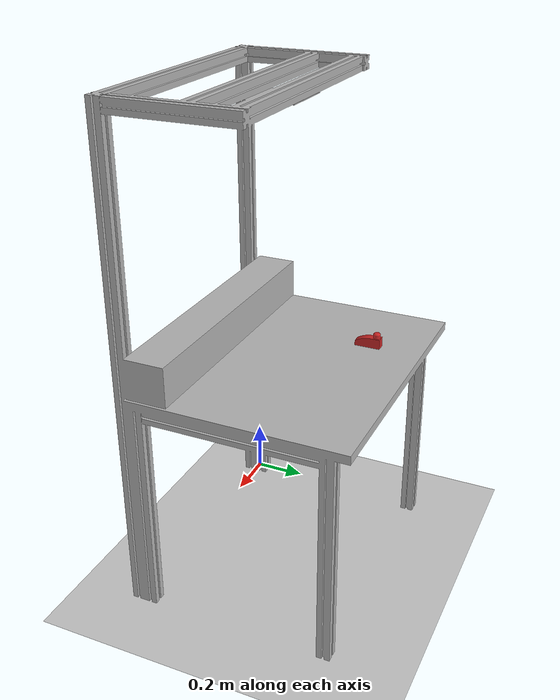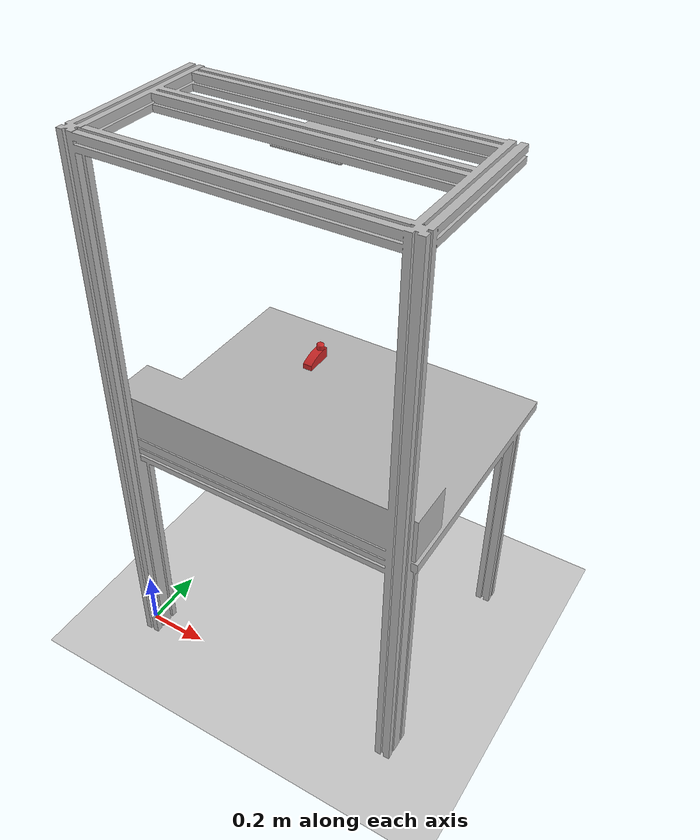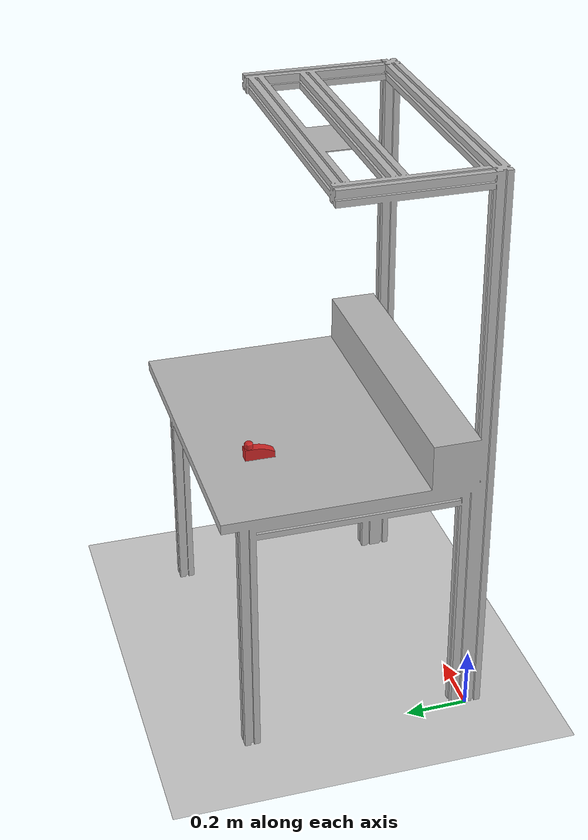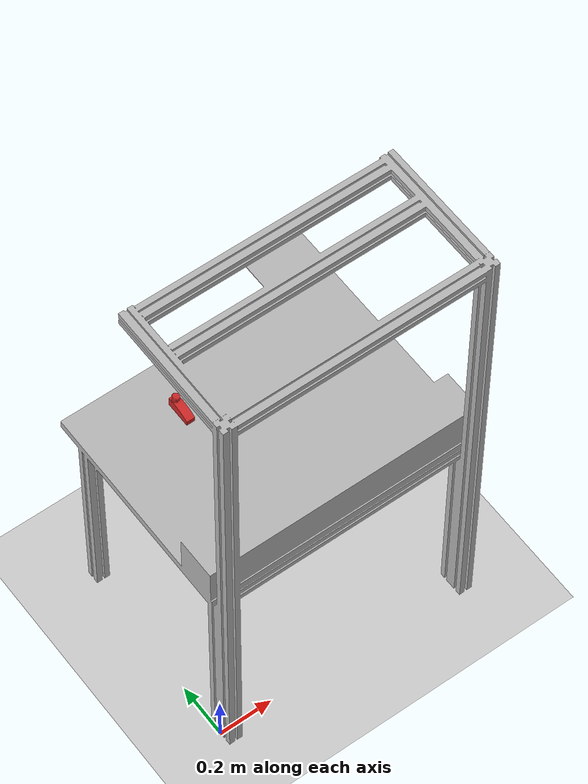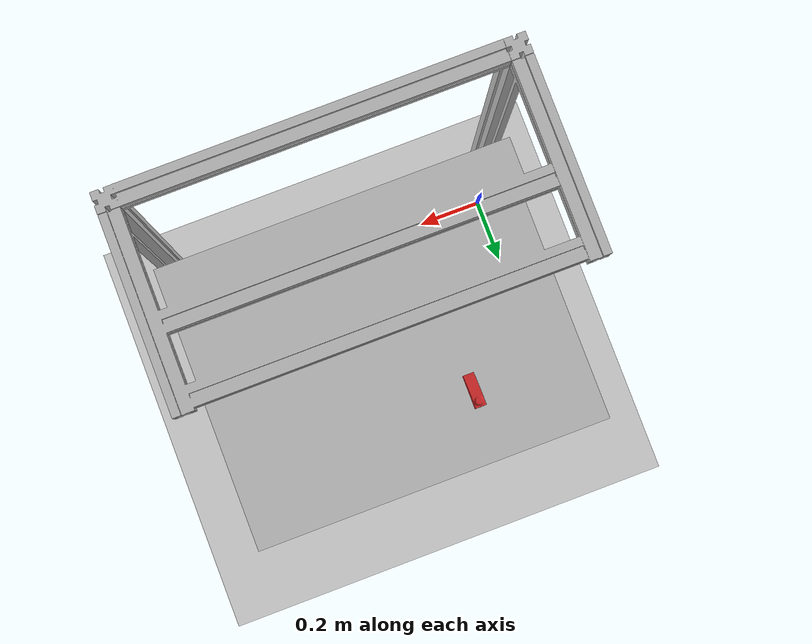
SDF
<?xml version="1.0" ?>
<sdf version="1.4">
  <world name="default">
    <physics type='ode'>
      <gravity>0 0 -9.81</gravity>
      <!-- max step size has to be a multiple of the desired task rate-->
      <max_step_size>0.001</max_step_size>
      <real_time_factor>1</real_time_factor>
    </physics>
    <!-- A global light source -->
    <include>
      <uri>model://sun</uri>
    </include>
    <!-- A ground plane -->
    <include>
      <uri>model://ground_plane</uri>
    </include>
    <include>
      <name>tavolo</name>
      <uri>model://tavolo</uri>
      <pose>0.0 0.0 0.0 0 0 0</pose>
    </include>
    <include>
      <name>X1-Y3-Z2-FILLET</name>
      <uri>model://X1-Y3-Z2-FILLET</uri>
      <pose>0.3 0.6 0.9 0 0 0</pose>
    </include>
     <gui>
    <camera name="gzclient_camera">
      <pose>1. 3.2 2.2 0. 0.4 -1.75</pose>
    </camera>
    </gui>

  </world>
</sdf>

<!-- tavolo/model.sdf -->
<sdf version="1.4">

<physics type="ode">

      <ode>

        <constraints>
          <contact_max_correcting_vel>0.1</contact_max_correcting_vel>
          <contact_surface_layer>0.0001</contact_surface_layer>
        </constraints>
      </ode>
	<max_contacts>10</max_contacts>
	</physics>

	<model name="tavolo">
	    <static>true</static>
		<link name="link">

		     <collision name="base">
			<pose>0.5 0.4 0.85 0 0 0</pose>
			<geometry>
			  <box>
			    <size>1 0.8 0.04</size>
			  </box>
			</geometry>

				<!-- see https://gazebosim.org/tutorials?tut=physics_params&cat=physics-->
				 <surface>
				  <bounce>
				    <restitution_coefficient>0.01</restitution_coefficient>
				    <threshold>5.0</threshold>
				  </bounce>
				  <friction>
				    <ode>
				      <mu>10</mu>
				      <mu2>10</mu2>
				    </ode>
				  </friction>
				  <contact>
				     <ode>
					<max_vel>0.1</max_vel>
					<min_depth>0.001</min_depth>
				        <kp>1000000.0</kp>
					<kd>1000.0</kd>
				      </ode>
			            </contact>
				</surface>

		     	</collision>

	     			<collision name="box">
				<pose>0.5 0.08 0.95 0 0 0</pose>
				<geometry>
				  <box>
				    <size>1 0.15 0.15</size>
				  </box>
				</geometry>

				 <surface>
				  <bounce>
				    <restitution_coefficient>0.01</restitution_coefficient>
				    <threshold>5.0</threshold>
				  </bounce>
				  <friction>
				    <ode>
				      <mu>10</mu>
				      <mu2>10</mu2>
				    </ode>
				  </friction>
				  <contact>
				     <ode>
					<max_vel>0.1</max_vel>
					<min_depth>0.001</min_depth>
				        <kp>1000000.0</kp>
					<kd>1000.0</kd>
				      </ode>
			            </contact>
				</surface>

			      </collision>

			   <collision name="back">
				<pose>0.5 -0.02 1.35 1.57 0 0</pose>
				<geometry>
				  <box>
				    <size>1 1.0 0.04</size>
				  </box>
				</geometry>

				 <surface>
				  <bounce>
				    <restitution_coefficient>0.01</restitution_coefficient>
				    <threshold>5.0</threshold>
				  </bounce>
				  <friction>
				    <ode>
				      <mu>10</mu>
				      <mu2>10</mu2>
				    </ode>
				  </friction>
				  <contact>
				     <ode>
					<max_vel>0.1</max_vel>
					<min_depth>0.001</min_depth>
				        <kp>1000000.0</kp>
					<kd>1000.0</kd>
				      </ode>
			            </contact>
				</surface>

			      </collision>

			<visual name="visual">
				<geometry>
					<mesh>
						<uri>model://tavolo/mesh/tavolo.stl</uri>
                                                <scale>0.001 0.001 0.001</scale>
					</mesh>
				</geometry>
			</visual>
		</link>
	</model>
</sdf>

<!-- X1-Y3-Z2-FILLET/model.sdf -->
<sdf version="1.4">
  <model name="X1-Y3-Z2-FILLET">
    <static>false</static>
    <link name="link">
      <pose>0 0 0 0 0 0</pose>
      <inertial>
        <pose>0e-02 0.6707e-02 -0.4936e-02</pose>
        <mass>16.4195e-6</mass>
        <inertia>
          <ixx>169.806e-10</ixx>
          <ixy>-0.0027e-10</ixy>
          <ixz>-0.0005e-10</ixz>
          <iyy>57.322e-10</iyy>
          <iyz>-22.714e-10</iyz>
          <izz>158.658e-10</izz>
        </inertia>
      </inertial>

      <visual name="visual">
        <geometry>
          <mesh>
            <uri>model://X1-Y3-Z2-FILLET/meshes/X1-Y3-Z2-FILLET.stl</uri>
          </mesh>
        </geometry>
        <material>
          <script>
            <uri>file://media/materials/scripts/gazebo.material</uri>
            <name>Gazebo/Red</name>
          </script>
        </material>
      </visual>

      <collision name="collision">
        <geometry>
          <mesh>
            <uri>model://X1-Y3-Z2-FILLET/meshes/X1-Y3-Z2-FILLET.stl</uri>
          </mesh>
        </geometry>
      </collision>
    </link>
  </model>
</sdf>
